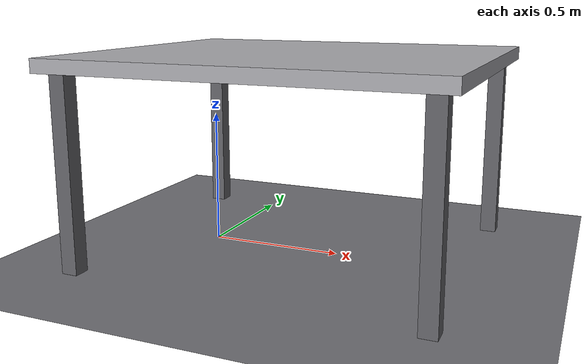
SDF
<?xml version="1.0"?>
<sdf version="1.9">
  <world name="cuboid_cell">

    <gui fullscreen="0">
      <plugin filename="MinimalScene" name="3D View">
        <gz-gui>
          <title>3D View</title>
          <property type="bool" key="showTitleBar">false</property>
          <property type="string" key="state">docked</property>
        </gz-gui>
        <engine>ogre2</engine>
        <scene>scene</scene>
        <ambient_light>0.5 0.5 0.5</ambient_light>
        <background_color>0.75 0.78 0.82</background_color>
        <!-- x y z roll pitch yaw. The camera looks along its own x axis. -->
        <camera_pose>-0.35 -1.0 1.55 0 0.52 0.88</camera_pose>
      </plugin>

      <!-- Keeps the view in step with what the server is simulating. -->
      <plugin filename="GzSceneManager" name="Scene Manager">
        <gz-gui><property key="resizable" type="bool">false</property>
          <property key="showTitleBar" type="bool">false</property>
          <property key="state" type="string">floating</property>
        </gz-gui>
      </plugin>
      <!-- Orbit, pan and zoom with the mouse. -->
      <plugin filename="InteractiveViewControl" name="Interactive view control">
        <gz-gui><property key="resizable" type="bool">false</property>
          <property key="showTitleBar" type="bool">false</property>
          <property key="state" type="string">floating</property>
        </gz-gui>
      </plugin>
      <plugin filename="CameraTracking" name="Camera Tracking">
        <gz-gui><property key="resizable" type="bool">false</property>
          <property key="showTitleBar" type="bool">false</property>
          <property key="state" type="string">floating</property>
        </gz-gui>
      </plugin>
      <plugin filename="SelectEntities" name="Select entities">
        <gz-gui><property key="resizable" type="bool">false</property>
          <property key="showTitleBar" type="bool">false</property>
          <property key="state" type="string">floating</property>
        </gz-gui>
      </plugin>
      <plugin filename="EntityContextMenuPlugin" name="Entity context menu">
        <gz-gui><property key="resizable" type="bool">false</property>
          <property key="showTitleBar" type="bool">false</property>
          <property key="state" type="string">floating</property>
        </gz-gui>
      </plugin>
      <plugin filename="VisualizationCapabilities" name="Visualization Capabilities">
        <gz-gui><property key="resizable" type="bool">false</property>
          <property key="showTitleBar" type="bool">false</property>
          <property key="state" type="string">floating</property>
        </gz-gui>
      </plugin>

      <!-- Play, pause and step, and the clock and real-time factor readout. -->
      <plugin filename="WorldControl" name="World control">
        <gz-gui>
          <title>World control</title>
          <property type="bool" key="showTitleBar">false</property>
          <property type="bool" key="resizable">false</property>
          <property type="double" key="height">72</property>
          <property type="double" key="z">1</property>
          <property type="string" key="state">floating</property>
          <anchors target="3D View">
            <line own="left" target="left"/>
            <line own="bottom" target="bottom"/>
          </anchors>
        </gz-gui>
        <play_pause>true</play_pause>
        <step>true</step>
        <start_paused>false</start_paused>
      </plugin>
      <plugin filename="WorldStats" name="World stats">
        <gz-gui>
          <title>World stats</title>
          <property type="bool" key="showTitleBar">false</property>
          <property type="bool" key="resizable">false</property>
          <property type="double" key="height">110</property>
          <property type="double" key="width">290</property>
          <property type="double" key="z">1</property>
          <property type="string" key="state">floating</property>
          <anchors target="3D View">
            <line own="right" target="right"/>
            <line own="bottom" target="bottom"/>
          </anchors>
        </gz-gui>
        <sim_time>true</sim_time>
        <real_time>true</real_time>
        <real_time_factor>true</real_time_factor>
      </plugin>

      <!-- The list of everything in the world, for clicking through the model. -->
      <plugin filename="EntityTree" name="Entity tree"/>
    </gui>

    <physics name="4ms" type="ignored">
      <max_step_size>0.004</max_step_size>
      <real_time_factor>1.0</real_time_factor>
    </physics>

    <plugin filename="gz-sim-physics-system" name="gz::sim::systems::Physics"/>
    <plugin filename="gz-sim-user-commands-system" name="gz::sim::systems::UserCommands"/>
    <plugin filename="gz-sim-scene-broadcaster-system" name="gz::sim::systems::SceneBroadcaster"/>
    <!-- Renders the wrist camera. Without this the camera topics stay silent. -->
    <plugin filename="gz-sim-sensors-system" name="gz::sim::systems::Sensors">
      <render_engine>ogre2</render_engine>
    </plugin>
    <!-- Serves the fingertip contact sensor. -->
    <plugin filename="gz-sim-contact-system" name="gz::sim::systems::Contact"/>

    <light type="directional" name="sun">
      <cast_shadows>true</cast_shadows>
      <pose>0 0 10 0 0 0</pose>
      <diffuse>0.9 0.9 0.9 1</diffuse>
      <specular>0.2 0.2 0.2 1</specular>
      <direction>-0.4 0.3 -0.9</direction>
    </light>

    <light type="directional" name="fill">
      <cast_shadows>false</cast_shadows>
      <pose>0 0 10 0 0 0</pose>
      <diffuse>0.4 0.4 0.4 1</diffuse>
      <specular>0 0 0 1</specular>
      <direction>0.5 -0.4 -0.8</direction>
    </light>

    <scene>
      <ambient>0.6 0.6 0.6 1</ambient>
      <background>0.75 0.78 0.82 1</background>
    </scene>

    <model name="ground_plane">
      <static>true</static>
      <link name="link">
        <collision name="collision">
          <geometry><plane><normal>0 0 1</normal><size>20 20</size></plane></geometry>
        </collision>
        <visual name="visual">
          <geometry><plane><normal>0 0 1</normal><size>20 20</size></plane></geometry>
          <material>
            <ambient>0.35 0.35 0.37 1</ambient>
            <diffuse>0.45 0.45 0.47 1</diffuse>
          </material>
        </visual>
      </link>
    </model>

    <model name="table">
      <static>true</static>
      <pose>0.35 0 0 0 0 0</pose>
      <link name="link">
        <collision name="top_collision">
          <pose>0 0 0.725 0 0 0</pose>
          <geometry><box><size>1.4 1.2 0.05</size></box></geometry>
          <surface><friction><ode><mu>0.8</mu><mu2>0.8</mu2></ode></friction></surface>
        </collision>
        <visual name="top_visual">
          <pose>0 0 0.725 0 0 0</pose>
          <geometry><box><size>1.4 1.2 0.05</size></box></geometry>
          <material>
            <ambient>0.55 0.55 0.56 1</ambient>
            <diffuse>0.68 0.68 0.70 1</diffuse>
          </material>
        </visual>
        <visual name="leg_a"><pose>0.63 0.53 0.35 0 0 0</pose>
          <geometry><box><size>0.06 0.06 0.7</size></box></geometry>
          <material><ambient>0.3 0.3 0.32 1</ambient><diffuse>0.4 0.4 0.42 1</diffuse></material>
        </visual>
        <visual name="leg_b"><pose>0.63 -0.53 0.35 0 0 0</pose>
          <geometry><box><size>0.06 0.06 0.7</size></box></geometry>
          <material><ambient>0.3 0.3 0.32 1</ambient><diffuse>0.4 0.4 0.42 1</diffuse></material>
        </visual>
        <visual name="leg_c"><pose>-0.63 0.53 0.35 0 0 0</pose>
          <geometry><box><size>0.06 0.06 0.7</size></box></geometry>
          <material><ambient>0.3 0.3 0.32 1</ambient><diffuse>0.4 0.4 0.42 1</diffuse></material>
        </visual>
        <visual name="leg_d"><pose>-0.63 -0.53 0.35 0 0 0</pose>
          <geometry><box><size>0.06 0.06 0.7</size></box></geometry>
          <material><ambient>0.3 0.3 0.32 1</ambient><diffuse>0.4 0.4 0.42 1</diffuse></material>
        </visual>
      </link>
    </model>

    <!-- CUBOIDS -->

  </world>
</sdf>
